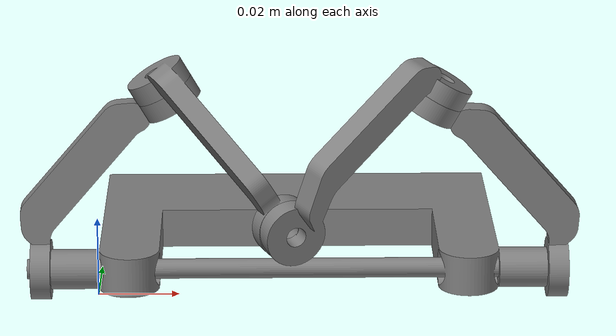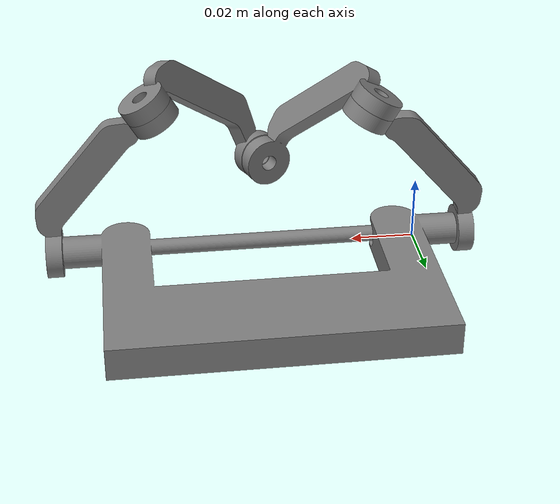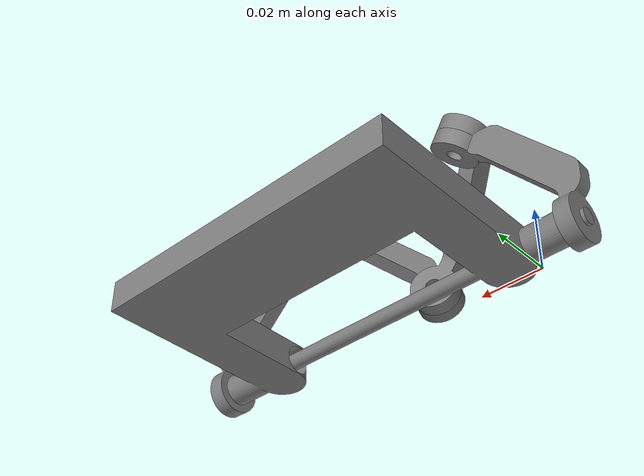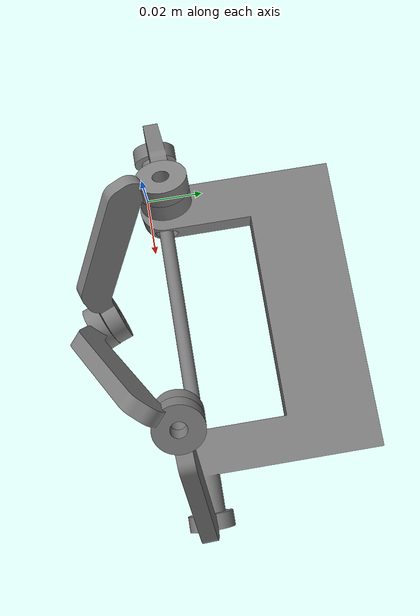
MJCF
<mujoco model="Final">
  <compiler angle="radian" meshdir="meshes/" autolimits="true"/>
  <default/>
  <asset>
    <mesh name="base_link" file="base_link.stl" scale="0.001 0.001 0.001"/>
    <mesh name="component1" file="component1.stl" scale="0.001 0.001 0.001"/>
    <mesh name="middle1" file="middle1.stl" scale="0.001 0.001 0.001"/>
    <mesh name="left_arc1" file="left_arc1.stl" scale="0.001 0.001 0.001"/>
    <mesh name="mid_arc1" file="mid_arc1.stl" scale="0.001 0.001 0.001"/>
  </asset>
  <worldbody>
    <body name="base_link" pos="0 0 0" gravcomp="0">
      <inertial pos="0.0497564 0.0393883 0.00499696" quat="-0.00378282 0.707116 0.00356291 0.707078" mass="0.33669" diaginertia="0.000506421 0.000392388 0.000119456"/>
      <geom type="mesh" contype="0" conaffinity="0" group="1" density="0" mesh="base_link"/>
      <geom type="mesh" mesh="base_link"/>
      <body name="component1" pos="0.115003 0.005119 0.004906" gravcomp="0">
        <inertial pos="-0.0130938 -0.00162448 0.0241317" quat="0.675554 -0.20333 -0.248674 0.66366" mass="0.0293522" diaginertia="1.26234e-05 1.22615e-05 8.17656e-07"/>
        <joint name="Revolute_14" pos="0 0 0" axis="1 0 0"/>
        <geom pos="-0.115003 -0.005119 -0.004906" type="mesh" contype="0" conaffinity="0" group="1" density="0" mesh="component1"/>
        <geom pos="-0.115003 -0.005119 -0.004906" type="mesh" mesh="component1"/>
        <body name="middle1" pos="0.115826 -0.046776 0.105111" gravcomp="0">
          <inertial pos="-0.164998 0.0294642 -0.0672115" quat="0.263276 0.300812 0.326677 0.856434" mass="0.0307024" diaginertia="1.3062e-05 1.21298e-05 1.28189e-06"/>
          <joint name="Revolute_16" pos="0 0 0" axis="-0.497979 -0.018186 -0.866998"/>
          <geom pos="-0.230829 0.041657 -0.110017" type="mesh" contype="0" conaffinity="0" group="1" density="0" mesh="middle1"/>
          <geom pos="-0.230829 0.041657 -0.110017" type="mesh" mesh="middle1"/>
        </body>
      </body>
      <body name="left_arc1" pos="0.048503 0.005119 0.004906" gravcomp="0">
        <inertial pos="-0.0503139 0.00162506 0.0241317" quat="0.675554 0.20333 0.248674 0.66366" mass="0.0293522" diaginertia="1.26234e-05 1.22615e-05 8.17656e-07"/>
        <joint name="Revolute_17" pos="0 0 0" axis="1 0 0"/>
        <geom pos="-0.048503 -0.005119 -0.004906" type="mesh" contype="0" conaffinity="0" group="1" density="0" mesh="left_arc1"/>
        <geom pos="-0.048503 -0.005119 -0.004906" type="mesh" mesh="left_arc1"/>
        <body name="mid_arc1" pos="-0.096061 -0.002261 0.04476" gravcomp="0">
          <inertial pos="0.0774342 -0.0106264 -0.00806521" quat="0.901149 -0.273855 -0.329325 0.066925" mass="0.0293522" diaginertia="1.11333e-05 1.03989e-05 1.18928e-06"/>
          <joint name="Revolute_19" pos="0 0 0" axis="0.497979 0.018186 -0.866998"/>
          <geom pos="0.047558 -0.002858 -0.049666" type="mesh" contype="0" conaffinity="0" group="1" density="0" mesh="mid_arc1"/>
          <geom pos="0.047558 -0.002858 -0.049666" type="mesh" mesh="mid_arc1"/>
        </body>
      </body>
    </body>
  </worldbody>

  <equality>
    <connect name="link1" active="true" body1="mid_arc1" body2="middle1" anchor="1 1 1"/>
  </equality>

</mujoco>
